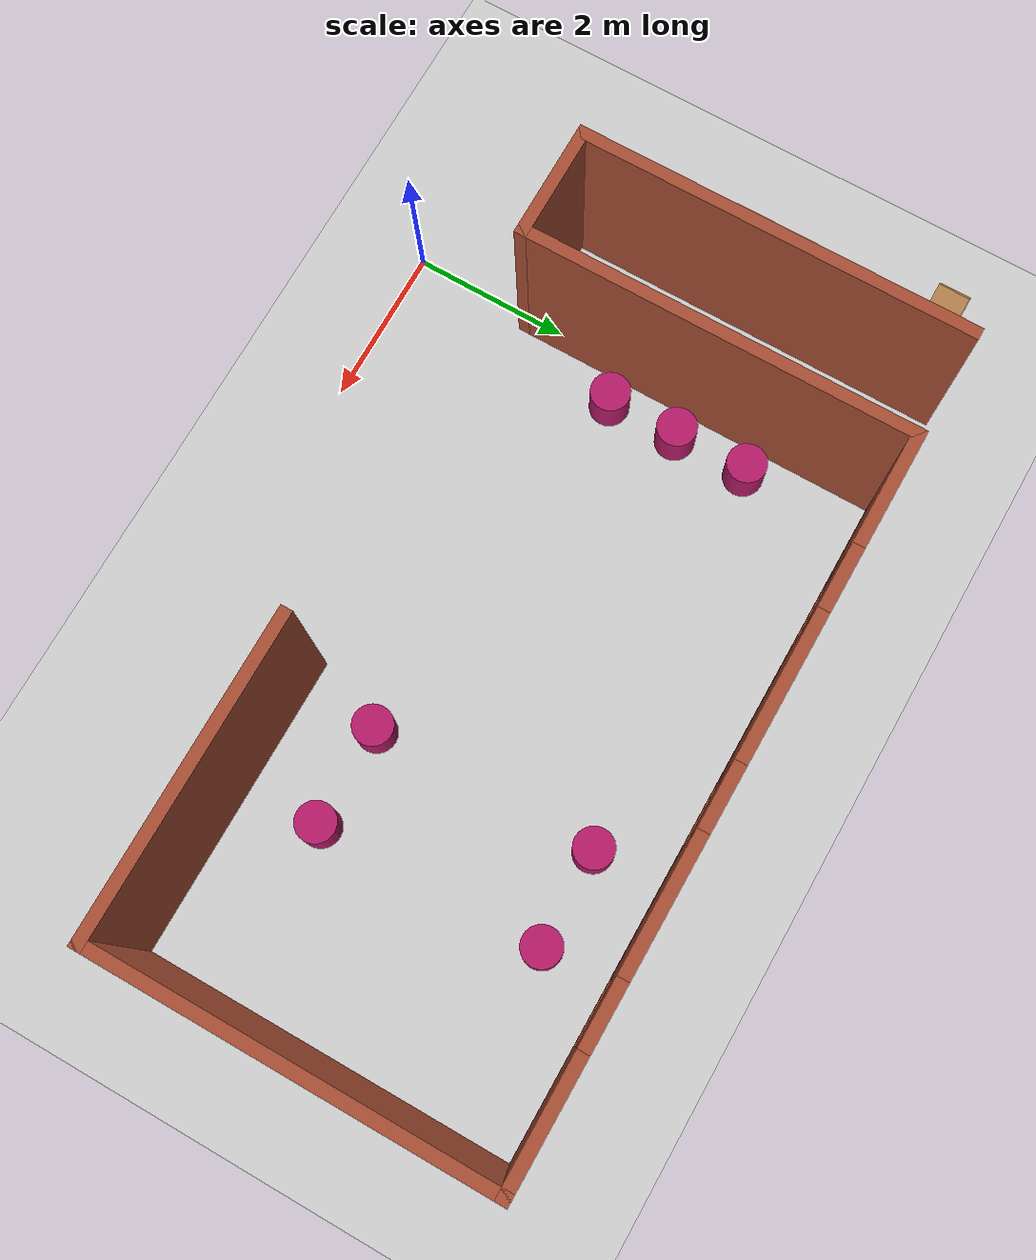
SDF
<sdf version="1.6">
 <world name="default">
  <model name="ground_plane">
   <static>1</static>
   <link name="link">
    <collision name="collision">
     <geometry><plane><normal>0 0 1</normal><size>100 100</size></plane></geometry>
     <surface>
      <contact><collide_bitmask>65535</collide_bitmask></contact>
      <friction><ode><mu>100</mu><mu2>50</mu2></ode></friction>
     </surface>
    </collision>
    <visual name="visual">
     <cast_shadows>0</cast_shadows>
     <geometry><plane><normal>0 0 1</normal><size>100 100</size></plane></geometry>
     <material>
      <script><uri>file://media/materials/scripts/gazebo.material</uri><name>Gazebo/Grey</name></script>
     </material>
    </visual>
   </link>
  </model>
  <model name="apartment">
   <link name="Wall_14">
    <pose>6.63582 1.90558 0 0 -0 0</pose>
    <visual name="Wall_14_Visual">
     <pose>0 0 1.25 0 -0 0</pose>
     <geometry><box><size>4 0.15 2.5</size></box></geometry>
     <material>
      <script><uri>file://media/materials/scripts/gazebo.material</uri><name>Gazebo/Bricks</name></script>
      <ambient>1 1 1 1</ambient>
     </material>
     <meta><layer>0</layer></meta>
    </visual>
    <collision name="Wall_14_Collision">
     <pose>0 0 1.25 0 -0 0</pose>
     <geometry><box><size>4 0.15 2.5</size></box></geometry>
     <surface>
      <friction>
       <ode><mu>1</mu><mu2>1</mu2><fdir1>0 0 0</fdir1><slip1>0</slip1><slip2>0</slip2></ode>
       <torsional>
        <coefficient>1</coefficient>
        <patch_radius>0</patch_radius>
        <surface_radius>0</surface_radius>
        <use_patch_radius>1</use_patch_radius>
        <ode><slip>0</slip></ode>
       </torsional>
      </friction>
      <bounce><restitution_coefficient>0</restitution_coefficient><threshold>1e+06</threshold></bounce>
      <contact>
       <collide_without_contact>0</collide_without_contact>
       <collide_without_contact_bitmask>1</collide_without_contact_bitmask>
       <collide_bitmask>1</collide_bitmask>
       <ode>
        <soft_cfm>0</soft_cfm>
        <soft_erp>0.2</soft_erp>
        <kp>1e+13</kp>
        <kd>1</kd>
        <max_vel>0.01</max_vel>
        <min_depth>0</min_depth>
       </ode>
       <bullet>
        <split_impulse>1</split_impulse>
        <split_impulse_penetration_threshold>-0.01</split_impulse_penetration_threshold>
        <soft_cfm>0</soft_cfm>
        <soft_erp>0.2</soft_erp>
        <kp>1e+13</kp>
        <kd>1</kd>
       </bullet>
      </contact>
     </surface>
    </collision>
   </link>
   <link name="Wall_15">
    <pose>8.56082 4.33059 0 0 -0 1.5708</pose>
    <visual name="Wall_15_Visual">
     <pose>0 0 1.25 0 -0 0</pose>
     <geometry><box><size>5 0.15 2.5</size></box></geometry>
     <material>
      <script><uri>file://media/materials/scripts/gazebo.material</uri><name>Gazebo/Bricks</name></script>
      <ambient>1 1 1 1</ambient>
     </material>
     <meta><layer>0</layer></meta>
    </visual>
    <collision name="Wall_15_Collision">
     <pose>0 0 1.25 0 -0 0</pose>
     <geometry><box><size>5 0.15 2.5</size></box></geometry>
     <surface>
      <friction>
       <ode><mu>1</mu><mu2>1</mu2><fdir1>0 0 0</fdir1><slip1>0</slip1><slip2>0</slip2></ode>
       <torsional>
        <coefficient>1</coefficient>
        <patch_radius>0</patch_radius>
        <surface_radius>0</surface_radius>
        <use_patch_radius>1</use_patch_radius>
        <ode><slip>0</slip></ode>
       </torsional>
      </friction>
      <bounce><restitution_coefficient>0</restitution_coefficient><threshold>1e+06</threshold></bounce>
      <contact>
       <collide_without_contact>0</collide_without_contact>
       <collide_without_contact_bitmask>1</collide_without_contact_bitmask>
       <collide_bitmask>1</collide_bitmask>
       <ode>
        <soft_cfm>0</soft_cfm>
        <soft_erp>0.2</soft_erp>
        <kp>1e+13</kp>
        <kd>1</kd>
        <max_vel>0.01</max_vel>
        <min_depth>0</min_depth>
       </ode>
       <bullet>
        <split_impulse>1</split_impulse>
        <split_impulse_penetration_threshold>-0.01</split_impulse_penetration_threshold>
        <soft_cfm>0</soft_cfm>
        <soft_erp>0.2</soft_erp>
        <kp>1e+13</kp>
        <kd>1</kd>
       </bullet>
      </contact>
     </surface>
    </collision>
   </link>
   <link name="Wall_16">
    <pose>4.13582 6.75558 0 0 -0 3.14159</pose>
    <visual name="Wall_16_Visual_1">
     <pose>0.807869 0 0.25 0 -0 0</pose>
     <geometry><box><size>7.38426 0.15 0.5</size></box></geometry>
     <material>
      <script><uri>file://media/materials/scripts/gazebo.material</uri><name>Gazebo/Bricks</name></script>
      <ambient>1 1 1 1</ambient>
     </material>
     <meta><layer>0</layer></meta>
    </visual>
    <visual name="Wall_16_Visual_0">
     <pose>-3.69213 0 1.25 0 -0 0</pose>
     <geometry><box><size>1.61574 0.15 2.5</size></box></geometry>
     <material>
      <script><uri>file://media/materials/scripts/gazebo.material</uri><name>Gazebo/Bricks</name></script>
      <ambient>1 1 1 1</ambient>
     </material>
     <meta><layer>0</layer></meta>
    </visual>
    <visual name="Wall_16_Visual_2">
     <pose>-1.25235 0 1.5 0 -0 0</pose>
     <geometry><box><size>1.66382 0.15 2</size></box></geometry>
     <material>
      <script><uri>file://media/materials/scripts/gazebo.material</uri><name>Gazebo/Bricks</name></script>
      <ambient>1 1 1 1</ambient>
     </material>
     <meta><layer>0</layer></meta>
    </visual>
    <visual name="Wall_16_Visual_3">
     <pose>1.29511 0 1.5 0 -0 0</pose>
     <geometry><box><size>1.83111 0.15 2</size></box></geometry>
     <material>
      <script><uri>file://media/materials/scripts/gazebo.material</uri><name>Gazebo/Bricks</name></script>
      <ambient>1 1 1 1</ambient>
     </material>
     <meta><layer>0</layer></meta>
    </visual>
    <visual name="Wall_16_Visual_4">
     <pose>3.75534 0 1.5 0 -0 0</pose>
     <geometry><box><size>1.48933 0.15 2</size></box></geometry>
     <material>
      <script><uri>file://media/materials/scripts/gazebo.material</uri><name>Gazebo/Bricks</name></script>
      <ambient>1 1 1 1</ambient>
     </material>
     <meta><layer>0</layer></meta>
    </visual>
    <visual name="Wall_16_Visual_5">
     <pose>-2.48426 0 1.9 0 -0 0</pose>
     <geometry><box><size>0.8 0.15 1.2</size></box></geometry>
     <material>
      <script><uri>file://media/materials/scripts/gazebo.material</uri><name>Gazebo/Bricks</name></script>
      <ambient>1 1 1 1</ambient>
     </material>
     <meta><layer>0</layer></meta>
    </visual>
    <visual name="Wall_16_Visual_6">
     <pose>-0.020444 0 1.9 0 -0 0</pose>
     <geometry><box><size>0.8 0.15 1.2</size></box></geometry>
     <material>
      <script><uri>file://media/materials/scripts/gazebo.material</uri><name>Gazebo/Bricks</name></script>
      <ambient>1 1 1 1</ambient>
     </material>
     <meta><layer>0</layer></meta>
    </visual>
    <visual name="Wall_16_Visual_7">
     <pose>2.61067 0 1.9 0 -0 0</pose>
     <geometry><box><size>0.8 0.15 1.2</size></box></geometry>
     <material>
      <script><uri>file://media/materials/scripts/gazebo.material</uri><name>Gazebo/Bricks</name></script>
      <ambient>1 1 1 1</ambient>
     </material>
     <meta><layer>0</layer></meta>
    </visual>
    <collision name="Wall_16_Collision_0">
     <pose>-3.69213 0 1.25 0 -0 0</pose>
     <geometry><box><size>1.61574 0.15 2.5</size></box></geometry>
     <surface>
      <friction>
       <ode><mu>1</mu><mu2>1</mu2><fdir1>0 0 0</fdir1><slip1>0</slip1><slip2>0</slip2></ode>
       <torsional>
        <coefficient>1</coefficient>
        <patch_radius>0</patch_radius>
        <surface_radius>0</surface_radius>
        <use_patch_radius>1</use_patch_radius>
        <ode><slip>0</slip></ode>
       </torsional>
      </friction>
      <bounce><restitution_coefficient>0</restitution_coefficient><threshold>1e+06</threshold></bounce>
      <contact>
       <collide_without_contact>0</collide_without_contact>
       <collide_without_contact_bitmask>1</collide_without_contact_bitmask>
       <collide_bitmask>1</collide_bitmask>
       <ode>
        <soft_cfm>0</soft_cfm>
        <soft_erp>0.2</soft_erp>
        <kp>1e+13</kp>
        <kd>1</kd>
        <max_vel>0.01</max_vel>
        <min_depth>0</min_depth>
       </ode>
       <bullet>
        <split_impulse>1</split_impulse>
        <split_impulse_penetration_threshold>-0.01</split_impulse_penetration_threshold>
        <soft_cfm>0</soft_cfm>
        <soft_erp>0.2</soft_erp>
        <kp>1e+13</kp>
        <kd>1</kd>
       </bullet>
      </contact>
     </surface>
    </collision>
    <collision name="Wall_16_Collision_1">
     <pose>0.807869 0 0.25 0 -0 0</pose>
     <geometry><box><size>7.38426 0.15 0.5</size></box></geometry>
     <surface>
      <friction>
       <ode><mu>1</mu><mu2>1</mu2><fdir1>0 0 0</fdir1><slip1>0</slip1><slip2>0</slip2></ode>
       <torsional>
        <coefficient>1</coefficient>
        <patch_radius>0</patch_radius>
        <surface_radius>0</surface_radius>
        <use_patch_radius>1</use_patch_radius>
        <ode><slip>0</slip></ode>
       </torsional>
      </friction>
      <bounce><restitution_coefficient>0</restitution_coefficient><threshold>1e+06</threshold></bounce>
      <contact>
       <collide_without_contact>0</collide_without_contact>
       <collide_without_contact_bitmask>1</collide_without_contact_bitmask>
       <collide_bitmask>1</collide_bitmask>
       <ode>
        <soft_cfm>0</soft_cfm>
        <soft_erp>0.2</soft_erp>
        <kp>1e+13</kp>
        <kd>1</kd>
        <max_vel>0.01</max_vel>
        <min_depth>0</min_depth>
       </ode>
       <bullet>
        <split_impulse>1</split_impulse>
        <split_impulse_penetration_threshold>-0.01</split_impulse_penetration_threshold>
        <soft_cfm>0</soft_cfm>
        <soft_erp>0.2</soft_erp>
        <kp>1e+13</kp>
        <kd>1</kd>
       </bullet>
      </contact>
     </surface>
    </collision>
    <collision name="Wall_16_Collision_2">
     <pose>-1.25235 0 1.5 0 -0 0</pose>
     <geometry><box><size>1.66382 0.15 2</size></box></geometry>
     <surface>
      <friction>
       <ode><mu>1</mu><mu2>1</mu2><fdir1>0 0 0</fdir1><slip1>0</slip1><slip2>0</slip2></ode>
       <torsional>
        <coefficient>1</coefficient>
        <patch_radius>0</patch_radius>
        <surface_radius>0</surface_radius>
        <use_patch_radius>1</use_patch_radius>
        <ode><slip>0</slip></ode>
       </torsional>
      </friction>
      <bounce><restitution_coefficient>0</restitution_coefficient><threshold>1e+06</threshold></bounce>
      <contact>
       <collide_without_contact>0</collide_without_contact>
       <collide_without_contact_bitmask>1</collide_without_contact_bitmask>
       <collide_bitmask>1</collide_bitmask>
       <ode>
        <soft_cfm>0</soft_cfm>
        <soft_erp>0.2</soft_erp>
        <kp>1e+13</kp>
        <kd>1</kd>
        <max_vel>0.01</max_vel>
        <min_depth>0</min_depth>
       </ode>
       <bullet>
        <split_impulse>1</split_impulse>
        <split_impulse_penetration_threshold>-0.01</split_impulse_penetration_threshold>
        <soft_cfm>0</soft_cfm>
        <soft_erp>0.2</soft_erp>
        <kp>1e+13</kp>
        <kd>1</kd>
       </bullet>
      </contact>
     </surface>
    </collision>
    <collision name="Wall_16_Collision_3">
     <pose>1.29511 0 1.5 0 -0 0</pose>
     <geometry><box><size>1.83111 0.15 2</size></box></geometry>
     <surface>
      <friction>
       <ode><mu>1</mu><mu2>1</mu2><fdir1>0 0 0</fdir1><slip1>0</slip1><slip2>0</slip2></ode>
       <torsional>
        <coefficient>1</coefficient>
        <patch_radius>0</patch_radius>
        <surface_radius>0</surface_radius>
        <use_patch_radius>1</use_patch_radius>
        <ode><slip>0</slip></ode>
       </torsional>
      </friction>
      <bounce><restitution_coefficient>0</restitution_coefficient><threshold>1e+06</threshold></bounce>
      <contact>
       <collide_without_contact>0</collide_without_contact>
       <collide_without_contact_bitmask>1</collide_without_contact_bitmask>
       <collide_bitmask>1</collide_bitmask>
       <ode>
        <soft_cfm>0</soft_cfm>
        <soft_erp>0.2</soft_erp>
        <kp>1e+13</kp>
        <kd>1</kd>
        <max_vel>0.01</max_vel>
        <min_depth>0</min_depth>
       </ode>
       <bullet>
        <split_impulse>1</split_impulse>
        <split_impulse_penetration_threshold>-0.01</split_impulse_penetration_threshold>
        <soft_cfm>0</soft_cfm>
        <soft_erp>0.2</soft_erp>
        <kp>1e+13</kp>
        <kd>1</kd>
       </bullet>
      </contact>
     </surface>
    </collision>
    <collision name="Wall_16_Collision_4">
     <pose>3.75534 0 1.5 0 -0 0</pose>
     <geometry><box><size>1.48933 0.15 2</size></box></geometry>
     <surface>
      <friction>
       <ode><mu>1</mu><mu2>1</mu2><fdir1>0 0 0</fdir1><slip1>0</slip1><slip2>0</slip2></ode>
       <torsional>
        <coefficient>1</coefficient>
        <patch_radius>0</patch_radius>
        <surface_radius>0</surface_radius>
        <use_patch_radius>1</use_patch_radius>
        <ode><slip>0</slip></ode>
       </torsional>
      </friction>
      <bounce><restitution_coefficient>0</restitution_coefficient><threshold>1e+06</threshold></bounce>
      <contact>
       <collide_without_contact>0</collide_without_contact>
       <collide_without_contact_bitmask>1</collide_without_contact_bitmask>
       <collide_bitmask>1</collide_bitmask>
       <ode>
        <soft_cfm>0</soft_cfm>
        <soft_erp>0.2</soft_erp>
        <kp>1e+13</kp>
        <kd>1</kd>
        <max_vel>0.01</max_vel>
        <min_depth>0</min_depth>
       </ode>
       <bullet>
        <split_impulse>1</split_impulse>
        <split_impulse_penetration_threshold>-0.01</split_impulse_penetration_threshold>
        <soft_cfm>0</soft_cfm>
        <soft_erp>0.2</soft_erp>
        <kp>1e+13</kp>
        <kd>1</kd>
       </bullet>
      </contact>
     </surface>
    </collision>
    <collision name="Wall_16_Collision_5">
     <pose>-2.48426 0 1.9 0 -0 0</pose>
     <geometry><box><size>0.8 0.15 1.2</size></box></geometry>
     <surface>
      <friction>
       <ode><mu>1</mu><mu2>1</mu2><fdir1>0 0 0</fdir1><slip1>0</slip1><slip2>0</slip2></ode>
       <torsional>
        <coefficient>1</coefficient>
        <patch_radius>0</patch_radius>
        <surface_radius>0</surface_radius>
        <use_patch_radius>1</use_patch_radius>
        <ode><slip>0</slip></ode>
       </torsional>
      </friction>
      <bounce><restitution_coefficient>0</restitution_coefficient><threshold>1e+06</threshold></bounce>
      <contact>
       <collide_without_contact>0</collide_without_contact>
       <collide_without_contact_bitmask>1</collide_without_contact_bitmask>
       <collide_bitmask>1</collide_bitmask>
       <ode>
        <soft_cfm>0</soft_cfm>
        <soft_erp>0.2</soft_erp>
        <kp>1e+13</kp>
        <kd>1</kd>
        <max_vel>0.01</max_vel>
        <min_depth>0</min_depth>
       </ode>
       <bullet>
        <split_impulse>1</split_impulse>
        <split_impulse_penetration_threshold>-0.01</split_impulse_penetration_threshold>
        <soft_cfm>0</soft_cfm>
        <soft_erp>0.2</soft_erp>
        <kp>1e+13</kp>
        <kd>1</kd>
       </bullet>
      </contact>
     </surface>
    </collision>
    <collision name="Wall_16_Collision_6">
     <pose>-0.020444 0 1.9 0 -0 0</pose>
     <geometry><box><size>0.8 0.15 1.2</size></box></geometry>
     <surface>
      <friction>
       <ode><mu>1</mu><mu2>1</mu2><fdir1>0 0 0</fdir1><slip1>0</slip1><slip2>0</slip2></ode>
       <torsional>
        <coefficient>1</coefficient>
        <patch_radius>0</patch_radius>
        <surface_radius>0</surface_radius>
        <use_patch_radius>1</use_patch_radius>
        <ode><slip>0</slip></ode>
       </torsional>
      </friction>
      <bounce><restitution_coefficient>0</restitution_coefficient><threshold>1e+06</threshold></bounce>
      <contact>
       <collide_without_contact>0</collide_without_contact>
       <collide_without_contact_bitmask>1</collide_without_contact_bitmask>
       <collide_bitmask>1</collide_bitmask>
       <ode>
        <soft_cfm>0</soft_cfm>
        <soft_erp>0.2</soft_erp>
        <kp>1e+13</kp>
        <kd>1</kd>
        <max_vel>0.01</max_vel>
        <min_depth>0</min_depth>
       </ode>
       <bullet>
        <split_impulse>1</split_impulse>
        <split_impulse_penetration_threshold>-0.01</split_impulse_penetration_threshold>
        <soft_cfm>0</soft_cfm>
        <soft_erp>0.2</soft_erp>
        <kp>1e+13</kp>
        <kd>1</kd>
       </bullet>
      </contact>
     </surface>
    </collision>
    <collision name="Wall_16_Collision_7">
     <pose>2.61067 0 1.9 0 -0 0</pose>
     <geometry><box><size>0.8 0.15 1.2</size></box></geometry>
     <surface>
      <friction>
       <ode><mu>1</mu><mu2>1</mu2><fdir1>0 0 0</fdir1><slip1>0</slip1><slip2>0</slip2></ode>
       <torsional>
        <coefficient>1</coefficient>
        <patch_radius>0</patch_radius>
        <surface_radius>0</surface_radius>
        <use_patch_radius>1</use_patch_radius>
        <ode><slip>0</slip></ode>
       </torsional>
      </friction>
      <bounce><restitution_coefficient>0</restitution_coefficient><threshold>1e+06</threshold></bounce>
      <contact>
       <collide_without_contact>0</collide_without_contact>
       <collide_without_contact_bitmask>1</collide_without_contact_bitmask>
       <collide_bitmask>1</collide_bitmask>
       <ode>
        <soft_cfm>0</soft_cfm>
        <soft_erp>0.2</soft_erp>
        <kp>1e+13</kp>
        <kd>1</kd>
        <max_vel>0.01</max_vel>
        <min_depth>0</min_depth>
       </ode>
       <bullet>
        <split_impulse>1</split_impulse>
        <split_impulse_penetration_threshold>-0.01</split_impulse_penetration_threshold>
        <soft_cfm>0</soft_cfm>
        <soft_erp>0.2</soft_erp>
        <kp>1e+13</kp>
        <kd>1</kd>
       </bullet>
      </contact>
     </surface>
    </collision>
   </link>
   <link name="Wall_17">
    <pose>-0.289182 4.33059 0 0 0 -1.5708</pose>
    <visual name="Wall_17_Visual">
     <pose>0 0 1.25 0 -0 0</pose>
     <geometry><box><size>5 0.15 2.5</size></box></geometry>
     <material>
      <script><uri>file://media/materials/scripts/gazebo.material</uri><name>Gazebo/Bricks</name></script>
      <ambient>1 1 1 1</ambient>
     </material>
     <meta><layer>0</layer></meta>
    </visual>
    <collision name="Wall_17_Collision">
     <pose>0 0 1.25 0 -0 0</pose>
     <geometry><box><size>5 0.15 2.5</size></box></geometry>
     <surface>
      <friction>
       <ode><mu>1</mu><mu2>1</mu2><fdir1>0 0 0</fdir1><slip1>0</slip1><slip2>0</slip2></ode>
       <torsional>
        <coefficient>1</coefficient>
        <patch_radius>0</patch_radius>
        <surface_radius>0</surface_radius>
        <use_patch_radius>1</use_patch_radius>
        <ode><slip>0</slip></ode>
       </torsional>
      </friction>
      <bounce><restitution_coefficient>0</restitution_coefficient><threshold>1e+06</threshold></bounce>
      <contact>
       <collide_without_contact>0</collide_without_contact>
       <collide_without_contact_bitmask>1</collide_without_contact_bitmask>
       <collide_bitmask>1</collide_bitmask>
       <ode>
        <soft_cfm>0</soft_cfm>
        <soft_erp>0.2</soft_erp>
        <kp>1e+13</kp>
        <kd>1</kd>
        <max_vel>0.01</max_vel>
        <min_depth>0</min_depth>
       </ode>
       <bullet>
        <split_impulse>1</split_impulse>
        <split_impulse_penetration_threshold>-0.01</split_impulse_penetration_threshold>
        <soft_cfm>0</soft_cfm>
        <soft_erp>0.2</soft_erp>
        <kp>1e+13</kp>
        <kd>1</kd>
       </bullet>
      </contact>
     </surface>
    </collision>
   </link>
   <link name="Wall_18">
    <pose>-0.964182 1.90558 0 0 -0 3.14159</pose>
    <visual name="Wall_18_Visual">
     <pose>0 0 1.25 0 -0 0</pose>
     <geometry><box><size>1.5 0.15 2.5</size></box></geometry>
     <material>
      <script><uri>file://media/materials/scripts/gazebo.material</uri><name>Gazebo/Bricks</name></script>
      <ambient>1 1 1 1</ambient>
     </material>
     <meta><layer>0</layer></meta>
    </visual>
    <collision name="Wall_18_Collision">
     <pose>0 0 1.25 0 -0 0</pose>
     <geometry><box><size>1.5 0.15 2.5</size></box></geometry>
     <surface>
      <friction>
       <ode><mu>1</mu><mu2>1</mu2><fdir1>0 0 0</fdir1><slip1>0</slip1><slip2>0</slip2></ode>
       <torsional>
        <coefficient>1</coefficient>
        <patch_radius>0</patch_radius>
        <surface_radius>0</surface_radius>
        <use_patch_radius>1</use_patch_radius>
        <ode><slip>0</slip></ode>
       </torsional>
      </friction>
      <bounce><restitution_coefficient>0</restitution_coefficient><threshold>1e+06</threshold></bounce>
      <contact>
       <collide_without_contact>0</collide_without_contact>
       <collide_without_contact_bitmask>1</collide_without_contact_bitmask>
       <collide_bitmask>1</collide_bitmask>
       <ode>
        <soft_cfm>0</soft_cfm>
        <soft_erp>0.2</soft_erp>
        <kp>1e+13</kp>
        <kd>1</kd>
        <max_vel>0.01</max_vel>
        <min_depth>0</min_depth>
       </ode>
       <bullet>
        <split_impulse>1</split_impulse>
        <split_impulse_penetration_threshold>-0.01</split_impulse_penetration_threshold>
        <soft_cfm>0</soft_cfm>
        <soft_erp>0.2</soft_erp>
        <kp>1e+13</kp>
        <kd>1</kd>
       </bullet>
      </contact>
     </surface>
    </collision>
   </link>
   <link name="Wall_20">
    <pose>-1.63918 4.33059 0 0 -0 1.5708</pose>
    <visual name="Wall_20_Visual">
     <pose>0 0 1.25 0 -0 0</pose>
     <geometry><box><size>5 0.15 2.5</size></box></geometry>
     <material>
      <script><uri>file://media/materials/scripts/gazebo.material</uri><name>Gazebo/Bricks</name></script>
      <ambient>1 1 1 1</ambient>
     </material>
     <meta><layer>0</layer></meta>
    </visual>
    <collision name="Wall_20_Collision">
     <pose>0 0 1.25 0 -0 0</pose>
     <geometry><box><size>5 0.15 2.5</size></box></geometry>
     <surface>
      <friction>
       <ode><mu>1</mu><mu2>1</mu2><fdir1>0 0 0</fdir1><slip1>0</slip1><slip2>0</slip2></ode>
       <torsional>
        <coefficient>1</coefficient>
        <patch_radius>0</patch_radius>
        <surface_radius>0</surface_radius>
        <use_patch_radius>1</use_patch_radius>
        <ode><slip>0</slip></ode>
       </torsional>
      </friction>
      <bounce><restitution_coefficient>0</restitution_coefficient><threshold>1e+06</threshold></bounce>
      <contact>
       <collide_without_contact>0</collide_without_contact>
       <collide_without_contact_bitmask>1</collide_without_contact_bitmask>
       <collide_bitmask>1</collide_bitmask>
       <ode>
        <soft_cfm>0</soft_cfm>
        <soft_erp>0.2</soft_erp>
        <kp>1e+13</kp>
        <kd>1</kd>
        <max_vel>0.01</max_vel>
        <min_depth>0</min_depth>
       </ode>
       <bullet>
        <split_impulse>1</split_impulse>
        <split_impulse_penetration_threshold>-0.01</split_impulse_penetration_threshold>
        <soft_cfm>0</soft_cfm>
        <soft_erp>0.2</soft_erp>
        <kp>1e+13</kp>
        <kd>1</kd>
       </bullet>
      </contact>
     </surface>
    </collision>
   </link>
   <static>1</static>
   <pose>0.39963 -0.33144 0 0 -0 0</pose>
  </model>
  <model name="bookshelf">
   <static>1</static>
   <link name="link">
    <inertial><mass>1</mass></inertial>
    <collision name="back">
     <pose>0 0.005 0.6 0 -0 0</pose>
     <geometry><box><size>0.9 0.01 1.2</size></box></geometry>
    </collision>
    <visual name="visual1">
     <pose>0 0.005 0.6 0 -0 0</pose>
     <geometry><box><size>0.9 0.01 1.2</size></box></geometry>
     <material>
      <script><uri>file://media/materials/scripts/gazebo.material</uri><name>Gazebo/Wood</name></script>
     </material>
    </visual>
    <collision name="left_side">
     <pose>0.45 -0.195 0.6 0 -0 0</pose>
     <geometry><box><size>0.02 0.4 1.2</size></box></geometry>
    </collision>
    <visual name="visual2">
     <pose>0.45 -0.195 0.6 0 -0 0</pose>
     <geometry><box><size>0.02 0.4 1.2</size></box></geometry>
     <material>
      <script><uri>file://media/materials/scripts/gazebo.material</uri><name>Gazebo/Wood</name></script>
     </material>
    </visual>
    <collision name="right_side">
     <pose>-0.45 -0.195 0.6 0 -0 0</pose>
     <geometry><box><size>0.02 0.4 1.2</size></box></geometry>
    </collision>
    <visual name="visual3">
     <pose>-0.45 -0.195 0.6 0 -0 0</pose>
     <geometry><box><size>0.02 0.4 1.2</size></box></geometry>
     <material>
      <script><uri>file://media/materials/scripts/gazebo.material</uri><name>Gazebo/Wood</name></script>
     </material>
    </visual>
    <collision name="bottom">
     <pose>0 -0.195 0.03 0 -0 0</pose>
     <geometry><box><size>0.88 0.4 0.06</size></box></geometry>
    </collision>
    <visual name="visual4">
     <pose>0 -0.195 0.03 0 -0 0</pose>
     <geometry><box><size>0.88 0.4 0.06</size></box></geometry>
     <material>
      <script><uri>file://media/materials/scripts/gazebo.material</uri><name>Gazebo/Wood</name></script>
     </material>
    </visual>
    <collision name="top">
     <pose>0 -0.195 1.19 0 -0 0</pose>
     <geometry><box><size>0.88 0.4 0.02</size></box></geometry>
    </collision>
    <visual name="visual5">
     <pose>0 -0.195 1.19 0 -0 0</pose>
     <geometry><box><size>0.88 0.4 0.02</size></box></geometry>
     <material>
      <script><uri>file://media/materials/scripts/gazebo.material</uri><name>Gazebo/Wood</name></script>
     </material>
    </visual>
    <collision name="low_shelf">
     <pose>0 -0.195 0.43 0 -0 0</pose>
     <geometry><box><size>0.88 0.4 0.02</size></box></geometry>
    </collision>
    <visual name="visual6">
     <pose>0 -0.195 0.43 0 -0 0</pose>
     <geometry><box><size>0.88 0.4 0.02</size></box></geometry>
     <material>
      <script><uri>file://media/materials/scripts/gazebo.material</uri><name>Gazebo/Wood</name></script>
     </material>
    </visual>
    <collision name="high_shelf">
     <pose>0 -0.195 0.8 0 -0 0</pose>
     <geometry><box><size>0.88 0.4 0.02</size></box></geometry>
    </collision>
    <visual name="visual7">
     <pose>0 -0.195 0.8 0 -0 0</pose>
     <geometry><box><size>0.88 0.4 0.02</size></box></geometry>
     <material>
      <script><uri>file://media/materials/scripts/gazebo.material</uri><name>Gazebo/Wood</name></script>
     </material>
    </visual>
   </link>
   <pose>-1.83168 6.21596 0 0 -0 0</pose>
  </model>
  <model name="table">
   <static>1</static>
   <link name="link">
    <collision name="surface">
     <pose>0 0 1 0 -0 0</pose>
     <geometry><box><size>1.5 0.8 0.03</size></box></geometry>
     <surface><friction><ode><mu>0.6</mu><mu2>0.6</mu2></ode></friction></surface>
    </collision>
    <visual name="visual1">
     <pose>0 0 1 0 -0 0</pose>
     <geometry><box><size>1.5 0.8 0.03</size></box></geometry>
     <material>
      <script><uri>file://media/materials/scripts/gazebo.material</uri><name>Gazebo/Wood</name></script>
     </material>
    </visual>
    <collision name="front_left_leg">
     <pose>0.68 0.38 0.5 0 -0 0</pose>
     <geometry><cylinder><radius>0.02</radius><length>1</length></cylinder></geometry>
    </collision>
    <visual name="front_left_leg">
     <pose>0.68 0.38 0.5 0 -0 0</pose>
     <geometry><cylinder><radius>0.02</radius><length>1</length></cylinder></geometry>
     <material>
      <script><uri>file://media/materials/scripts/gazebo.material</uri><name>Gazebo/Grey</name></script>
     </material>
    </visual>
    <collision name="front_right_leg">
     <pose>0.68 -0.38 0.5 0 -0 0</pose>
     <geometry><cylinder><radius>0.02</radius><length>1</length></cylinder></geometry>
    </collision>
    <visual name="front_right_leg">
     <pose>0.68 -0.38 0.5 0 -0 0</pose>
     <geometry><cylinder><radius>0.02</radius><length>1</length></cylinder></geometry>
     <material>
      <script><uri>file://media/materials/scripts/gazebo.material</uri><name>Gazebo/Grey</name></script>
     </material>
    </visual>
    <collision name="back_right_leg">
     <pose>-0.68 -0.38 0.5 0 -0 0</pose>
     <geometry><cylinder><radius>0.02</radius><length>1</length></cylinder></geometry>
    </collision>
    <visual name="back_right_leg">
     <pose>-0.68 -0.38 0.5 0 -0 0</pose>
     <geometry><cylinder><radius>0.02</radius><length>1</length></cylinder></geometry>
     <material>
      <script><uri>file://media/materials/scripts/gazebo.material</uri><name>Gazebo/Grey</name></script>
     </material>
    </visual>
    <collision name="back_left_leg">
     <pose>-0.68 0.38 0.5 0 -0 0</pose>
     <geometry><cylinder><radius>0.02</radius><length>1</length></cylinder></geometry>
    </collision>
    <visual name="back_left_leg">
     <pose>-0.68 0.38 0.5 0 -0 0</pose>
     <geometry><cylinder><radius>0.02</radius><length>1</length></cylinder></geometry>
     <material>
      <script><uri>file://media/materials/scripts/gazebo.material</uri><name>Gazebo/Grey</name></script>
     </material>
    </visual>
   </link>
   <pose>-1.7266 3.96929 0 0 -0 1.56593</pose>
  </model>
  <model name="cylinder_chair_clone">
   <link name="link">
    <inertial>
     <mass>1</mass>
     <inertia><ixx>0.145833</ixx><ixy>0</ixy><ixz>0</ixz><iyy>0.145833</iyy><iyz>0</iyz><izz>0.125</izz></inertia>
    </inertial>
    <visual name="visual">
     <geometry><cylinder><radius>0.25</radius><length>0.5</length></cylinder></geometry>
     <material>
      <script><name>Gazebo/Grey</name><uri>file://media/materials/scripts/gazebo.material</uri></script>
      <shader type="vertex"><normal_map>__default__</normal_map></shader>
      <ambient>0.7 0.1 0.4 1</ambient>
      <diffuse>0.7 0.7 0.7 1</diffuse>
      <specular>0.01 0.01 0.01 1</specular>
      <emissive>0 0 0 1</emissive>
     </material>
    </visual>
    <collision name="collision">
     <geometry><cylinder><radius>0.25</radius><length>0.5</length></cylinder></geometry>
     <surface>
      <friction>
       <ode><mu>1</mu><mu2>1</mu2><fdir1>0 0 0</fdir1><slip1>0</slip1><slip2>0</slip2></ode>
       <torsional>
        <coefficient>1</coefficient>
        <patch_radius>0</patch_radius>
        <surface_radius>0</surface_radius>
        <use_patch_radius>1</use_patch_radius>
        <ode><slip>0</slip></ode>
       </torsional>
      </friction>
      <bounce><restitution_coefficient>0</restitution_coefficient><threshold>1e+06</threshold></bounce>
      <contact>
       <collide_without_contact>0</collide_without_contact>
       <collide_without_contact_bitmask>1</collide_without_contact_bitmask>
       <collide_bitmask>1</collide_bitmask>
       <ode>
        <soft_cfm>0</soft_cfm>
        <soft_erp>0.2</soft_erp>
        <kp>1e+13</kp>
        <kd>1</kd>
        <max_vel>0.01</max_vel>
        <min_depth>0</min_depth>
       </ode>
       <bullet>
        <split_impulse>1</split_impulse>
        <split_impulse_penetration_threshold>-0.01</split_impulse_penetration_threshold>
        <soft_cfm>0</soft_cfm>
        <soft_erp>0.2</soft_erp>
        <kp>1e+13</kp>
        <kd>1</kd>
       </bullet>
      </contact>
     </surface>
    </collision>
   </link>
   <static>0</static>
   <pose>5.43251 5.48345 0.24999 0 -0 0</pose>
  </model>
  <model name="cylinder_chair_clone_0">
   <link name="link">
    <inertial>
     <mass>1</mass>
     <inertia><ixx>0.145833</ixx><ixy>0</ixy><ixz>0</ixz><iyy>0.145833</iyy><iyz>0</iyz><izz>0.125</izz></inertia>
    </inertial>
    <visual name="visual">
     <geometry><cylinder><radius>0.25</radius><length>0.5</length></cylinder></geometry>
     <material>
      <script><name>Gazebo/Grey</name><uri>file://media/materials/scripts/gazebo.material</uri></script>
      <shader type="vertex"><normal_map>__default__</normal_map></shader>
      <ambient>0.7 0.1 0.4 1</ambient>
      <diffuse>0.7 0.7 0.7 1</diffuse>
      <specular>0.01 0.01 0.01 1</specular>
      <emissive>0 0 0 1</emissive>
     </material>
    </visual>
    <collision name="collision">
     <geometry><cylinder><radius>0.25</radius><length>0.5</length></cylinder></geometry>
     <surface>
      <friction>
       <ode><mu>1</mu><mu2>1</mu2><fdir1>0 0 0</fdir1><slip1>0</slip1><slip2>0</slip2></ode>
       <torsional>
        <coefficient>1</coefficient>
        <patch_radius>0</patch_radius>
        <surface_radius>0</surface_radius>
        <use_patch_radius>1</use_patch_radius>
        <ode><slip>0</slip></ode>
       </torsional>
      </friction>
      <bounce><restitution_coefficient>0</restitution_coefficient><threshold>1e+06</threshold></bounce>
      <contact>
       <collide_without_contact>0</collide_without_contact>
       <collide_without_contact_bitmask>1</collide_without_contact_bitmask>
       <collide_bitmask>1</collide_bitmask>
       <ode>
        <soft_cfm>0</soft_cfm>
        <soft_erp>0.2</soft_erp>
        <kp>1e+13</kp>
        <kd>1</kd>
        <max_vel>0.01</max_vel>
        <min_depth>0</min_depth>
       </ode>
       <bullet>
        <split_impulse>1</split_impulse>
        <split_impulse_penetration_threshold>-0.01</split_impulse_penetration_threshold>
        <soft_cfm>0</soft_cfm>
        <soft_erp>0.2</soft_erp>
        <kp>1e+13</kp>
        <kd>1</kd>
       </bullet>
      </contact>
     </surface>
    </collision>
   </link>
   <static>0</static>
   <pose>6.67361 5.51028 0.24999 0 -0 0</pose>
  </model>
  <model name="cylinder_chair_clone_1">
   <link name="link">
    <inertial>
     <mass>1</mass>
     <inertia><ixx>0.145833</ixx><ixy>0</ixy><ixz>0</ixz><iyy>0.145833</iyy><iyz>0</iyz><izz>0.125</izz></inertia>
    </inertial>
    <visual name="visual">
     <geometry><cylinder><radius>0.25</radius><length>0.5</length></cylinder></geometry>
     <material>
      <script><name>Gazebo/Grey</name><uri>file://media/materials/scripts/gazebo.material</uri></script>
      <shader type="vertex"><normal_map>__default__</normal_map></shader>
      <ambient>0.7 0.1 0.4 1</ambient>
      <diffuse>0.7 0.7 0.7 1</diffuse>
      <specular>0.01 0.01 0.01 1</specular>
      <emissive>0 0 0 1</emissive>
     </material>
    </visual>
    <collision name="collision">
     <geometry><cylinder><radius>0.25</radius><length>0.5</length></cylinder></geometry>
     <surface>
      <friction>
       <ode><mu>1</mu><mu2>1</mu2><fdir1>0 0 0</fdir1><slip1>0</slip1><slip2>0</slip2></ode>
       <torsional>
        <coefficient>1</coefficient>
        <patch_radius>0</patch_radius>
        <surface_radius>0</surface_radius>
        <use_patch_radius>1</use_patch_radius>
        <ode><slip>0</slip></ode>
       </torsional>
      </friction>
      <bounce><restitution_coefficient>0</restitution_coefficient><threshold>1e+06</threshold></bounce>
      <contact>
       <collide_without_contact>0</collide_without_contact>
       <collide_without_contact_bitmask>1</collide_without_contact_bitmask>
       <collide_bitmask>1</collide_bitmask>
       <ode>
        <soft_cfm>0</soft_cfm>
        <soft_erp>0.2</soft_erp>
        <kp>1e+13</kp>
        <kd>1</kd>
        <max_vel>0.01</max_vel>
        <min_depth>0</min_depth>
       </ode>
       <bullet>
        <split_impulse>1</split_impulse>
        <split_impulse_penetration_threshold>-0.01</split_impulse_penetration_threshold>
        <soft_cfm>0</soft_cfm>
        <soft_erp>0.2</soft_erp>
        <kp>1e+13</kp>
        <kd>1</kd>
       </bullet>
      </contact>
     </surface>
    </collision>
   </link>
   <static>0</static>
   <pose>5.45087 2.59082 0.24999 0 -0 0</pose>
  </model>
  <model name="cylinder_chair_clone_2">
   <link name="link">
    <inertial>
     <mass>1</mass>
     <inertia><ixx>0.145833</ixx><ixy>0</ixy><ixz>0</ixz><iyy>0.145833</iyy><iyz>0</iyz><izz>0.125</izz></inertia>
    </inertial>
    <visual name="visual">
     <geometry><cylinder><radius>0.25</radius><length>0.5</length></cylinder></geometry>
     <material>
      <script><name>Gazebo/Grey</name><uri>file://media/materials/scripts/gazebo.material</uri></script>
      <shader type="vertex"><normal_map>__default__</normal_map></shader>
      <ambient>0.7 0.1 0.4 1</ambient>
      <diffuse>0.7 0.7 0.7 1</diffuse>
      <specular>0.01 0.01 0.01 1</specular>
      <emissive>0 0 0 1</emissive>
     </material>
    </visual>
    <collision name="collision">
     <geometry><cylinder><radius>0.25</radius><length>0.5</length></cylinder></geometry>
     <surface>
      <friction>
       <ode><mu>1</mu><mu2>1</mu2><fdir1>0 0 0</fdir1><slip1>0</slip1><slip2>0</slip2></ode>
       <torsional>
        <coefficient>1</coefficient>
        <patch_radius>0</patch_radius>
        <surface_radius>0</surface_radius>
        <use_patch_radius>1</use_patch_radius>
        <ode><slip>0</slip></ode>
       </torsional>
      </friction>
      <bounce><restitution_coefficient>0</restitution_coefficient><threshold>1e+06</threshold></bounce>
      <contact>
       <collide_without_contact>0</collide_without_contact>
       <collide_without_contact_bitmask>1</collide_without_contact_bitmask>
       <collide_bitmask>1</collide_bitmask>
       <ode>
        <soft_cfm>0</soft_cfm>
        <soft_erp>0.2</soft_erp>
        <kp>1e+13</kp>
        <kd>1</kd>
        <max_vel>0.01</max_vel>
        <min_depth>0</min_depth>
       </ode>
       <bullet>
        <split_impulse>1</split_impulse>
        <split_impulse_penetration_threshold>-0.01</split_impulse_penetration_threshold>
        <soft_cfm>0</soft_cfm>
        <soft_erp>0.2</soft_erp>
        <kp>1e+13</kp>
        <kd>1</kd>
       </bullet>
      </contact>
     </surface>
    </collision>
   </link>
   <static>0</static>
   <pose>6.72223 2.60084 0.24999 0 -0 0</pose>
  </model>
  <model name="cylinder_chair_0">
   <link name="link">
    <inertial>
     <mass>1</mass>
     <inertia><ixx>0.145833</ixx><ixy>0</ixy><ixz>0</ixz><iyy>0.145833</iyy><iyz>0</iyz><izz>0.125</izz></inertia>
    </inertial>
    <visual name="visual">
     <geometry><cylinder><radius>0.25</radius><length>0.5</length></cylinder></geometry>
     <material>
      <script><name>Gazebo/Grey</name><uri>file://media/materials/scripts/gazebo.material</uri></script>
      <shader type="vertex"><normal_map>__default__</normal_map></shader>
      <ambient>0.7 0.1 0.4 1</ambient>
      <diffuse>0.7 0.7 0.7 1</diffuse>
      <specular>0.01 0.01 0.01 1</specular>
      <emissive>0 0 0 1</emissive>
     </material>
    </visual>
    <collision name="collision">
     <geometry><cylinder><radius>0.25</radius><length>0.5</length></cylinder></geometry>
     <surface>
      <friction>
       <ode><mu>1</mu><mu2>1</mu2><fdir1>0 0 0</fdir1><slip1>0</slip1><slip2>0</slip2></ode>
       <torsional>
        <coefficient>1</coefficient>
        <patch_radius>0</patch_radius>
        <surface_radius>0</surface_radius>
        <use_patch_radius>1</use_patch_radius>
        <ode><slip>0</slip></ode>
       </torsional>
      </friction>
      <bounce><restitution_coefficient>0</restitution_coefficient><threshold>1e+06</threshold></bounce>
      <contact>
       <collide_without_contact>0</collide_without_contact>
       <collide_without_contact_bitmask>1</collide_without_contact_bitmask>
       <collide_bitmask>1</collide_bitmask>
       <ode>
        <soft_cfm>0</soft_cfm>
        <soft_erp>0.2</soft_erp>
        <kp>1e+13</kp>
        <kd>1</kd>
        <max_vel>0.01</max_vel>
        <min_depth>0</min_depth>
       </ode>
       <bullet>
        <split_impulse>1</split_impulse>
        <split_impulse_penetration_threshold>-0.01</split_impulse_penetration_threshold>
        <soft_cfm>0</soft_cfm>
        <soft_erp>0.2</soft_erp>
        <kp>1e+13</kp>
        <kd>1</kd>
       </bullet>
      </contact>
     </surface>
    </collision>
   </link>
   <static>0</static>
   <pose>0.541605 4.84539 0.25 0 -0 0</pose>
  </model>
  <model name="cylinder_chair_1">
   <link name="link">
    <inertial>
     <mass>1</mass>
     <inertia><ixx>0.145833</ixx><ixy>0</ixy><ixz>0</ixz><iyy>0.145833</iyy><iyz>0</iyz><izz>0.125</izz></inertia>
    </inertial>
    <visual name="visual">
     <geometry><cylinder><radius>0.25</radius><length>0.5</length></cylinder></geometry>
     <material>
      <script><name>Gazebo/Grey</name><uri>file://media/materials/scripts/gazebo.material</uri></script>
      <shader type="vertex"><normal_map>__default__</normal_map></shader>
      <ambient>0.7 0.1 0.4 1</ambient>
      <diffuse>0.7 0.7 0.7 1</diffuse>
      <specular>0.01 0.01 0.01 1</specular>
      <emissive>0 0 0 1</emissive>
     </material>
    </visual>
    <collision name="collision">
     <geometry><cylinder><radius>0.25</radius><length>0.5</length></cylinder></geometry>
     <surface>
      <friction>
       <ode><mu>1</mu><mu2>1</mu2><fdir1>0 0 0</fdir1><slip1>0</slip1><slip2>0</slip2></ode>
       <torsional>
        <coefficient>1</coefficient>
        <patch_radius>0</patch_radius>
        <surface_radius>0</surface_radius>
        <use_patch_radius>1</use_patch_radius>
        <ode><slip>0</slip></ode>
       </torsional>
      </friction>
      <bounce><restitution_coefficient>0</restitution_coefficient><threshold>1e+06</threshold></bounce>
      <contact>
       <collide_without_contact>0</collide_without_contact>
       <collide_without_contact_bitmask>1</collide_without_contact_bitmask>
       <collide_bitmask>1</collide_bitmask>
       <ode>
        <soft_cfm>0</soft_cfm>
        <soft_erp>0.2</soft_erp>
        <kp>1e+13</kp>
        <kd>1</kd>
        <max_vel>0.01</max_vel>
        <min_depth>0</min_depth>
       </ode>
       <bullet>
        <split_impulse>1</split_impulse>
        <split_impulse_penetration_threshold>-0.01</split_impulse_penetration_threshold>
        <soft_cfm>0</soft_cfm>
        <soft_erp>0.2</soft_erp>
        <kp>1e+13</kp>
        <kd>1</kd>
       </bullet>
      </contact>
     </surface>
    </collision>
   </link>
   <static>0</static>
   <pose>0.545227 3.89923 0.25 0 -0 0</pose>
  </model>
  <model name="cylinder_chair_2">
   <link name="link">
    <inertial>
     <mass>1</mass>
     <inertia><ixx>0.145833</ixx><ixy>0</ixy><ixz>0</ixz><iyy>0.145833</iyy><iyz>0</iyz><izz>0.125</izz></inertia>
    </inertial>
    <visual name="visual">
     <geometry><cylinder><radius>0.25</radius><length>0.5</length></cylinder></geometry>
     <material>
      <script><name>Gazebo/Grey</name><uri>file://media/materials/scripts/gazebo.material</uri></script>
      <shader type="vertex"><normal_map>__default__</normal_map></shader>
      <ambient>0.7 0.1 0.4 1</ambient>
      <diffuse>0.7 0.7 0.7 1</diffuse>
      <specular>0.01 0.01 0.01 1</specular>
      <emissive>0 0 0 1</emissive>
     </material>
    </visual>
    <collision name="collision">
     <geometry><cylinder><radius>0.25</radius><length>0.5</length></cylinder></geometry>
     <surface>
      <friction>
       <ode><mu>1</mu><mu2>1</mu2><fdir1>0 0 0</fdir1><slip1>0</slip1><slip2>0</slip2></ode>
       <torsional>
        <coefficient>1</coefficient>
        <patch_radius>0</patch_radius>
        <surface_radius>0</surface_radius>
        <use_patch_radius>1</use_patch_radius>
        <ode><slip>0</slip></ode>
       </torsional>
      </friction>
      <bounce><restitution_coefficient>0</restitution_coefficient><threshold>1e+06</threshold></bounce>
      <contact>
       <collide_without_contact>0</collide_without_contact>
       <collide_without_contact_bitmask>1</collide_without_contact_bitmask>
       <collide_bitmask>1</collide_bitmask>
       <ode>
        <soft_cfm>0</soft_cfm>
        <soft_erp>0.2</soft_erp>
        <kp>1e+13</kp>
        <kd>1</kd>
        <max_vel>0.01</max_vel>
        <min_depth>0</min_depth>
       </ode>
       <bullet>
        <split_impulse>1</split_impulse>
        <split_impulse_penetration_threshold>-0.01</split_impulse_penetration_threshold>
        <soft_cfm>0</soft_cfm>
        <soft_erp>0.2</soft_erp>
        <kp>1e+13</kp>
        <kd>1</kd>
       </bullet>
      </contact>
     </surface>
    </collision>
   </link>
   <static>0</static>
   <pose>0.544658 2.98623 0.25 0 -0 0</pose>
  </model>
 </world>
</sdf>
